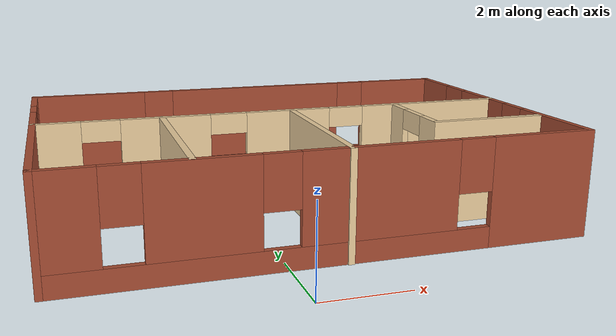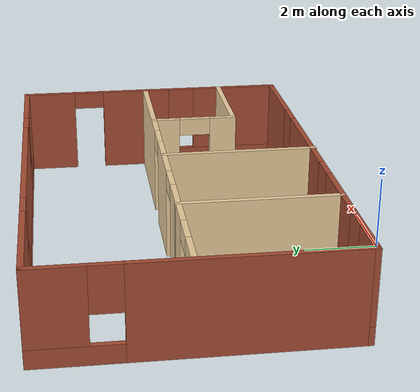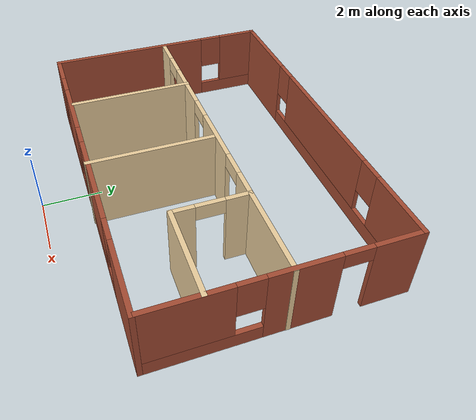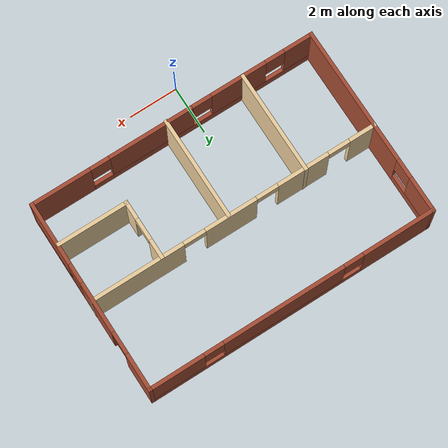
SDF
<?xml version='1.0'?>
<sdf version='1.6'>
  <model name='Building'>
    <pose frame=''>1.04028 5.52884 0 0 -0 0</pose>
    <link name='Wall_0'>
      <pose frame=''>-5.93028 0.01616 0 0 -0 1.5708</pose>
      <visual name='Wall_0_Visual_0'>
        <pose frame=''>-1.14394 0 1.25 0 -0 0</pose>
        <geometry>
          <box>
            <size>5.71213 0.15 2.5</size>
          </box>
        </geometry>
        <material>
          <script>
            <uri>file://media/materials/scripts/gazebo.material</uri>
            <name>Gazebo/Bricks</name>
          </script>
          <ambient>1 1 1 1</ambient>
        </material>
        <meta>
          <layer>0</layer>
        </meta>
      </visual>
      <collision name='Wall_0_Collision_0'>
        <geometry>
          <box>
            <size>5.71213 0.15 2.5</size>
          </box>
        </geometry>
        <pose frame=''>-1.14394 0 1.25 0 -0 0</pose>
      </collision>
      <visual name='Wall_0_Visual_1'>
        <pose frame=''>2.85606 0 0.25 0 -0 0</pose>
        <geometry>
          <box>
            <size>2.28788 0.15 0.5</size>
          </box>
        </geometry>
        <material>
          <script>
            <uri>file://media/materials/scripts/gazebo.material</uri>
            <name>Gazebo/Bricks</name>
          </script>
          <ambient>1 1 1 1</ambient>
        </material>
        <meta>
          <layer>0</layer>
        </meta>
      </visual>
      <collision name='Wall_0_Collision_1'>
        <geometry>
          <box>
            <size>2.28788 0.15 0.5</size>
          </box>
        </geometry>
        <pose frame=''>2.85606 0 0.25 0 -0 0</pose>
      </collision>
      <visual name='Wall_0_Visual_2'>
        <pose frame=''>3.25606 0 1.5 0 -0 0</pose>
        <geometry>
          <box>
            <size>1.48788 0.15 2</size>
          </box>
        </geometry>
        <material>
          <script>
            <uri>file://media/materials/scripts/gazebo.material</uri>
            <name>Gazebo/Bricks</name>
          </script>
          <ambient>1 1 1 1</ambient>
        </material>
        <meta>
          <layer>0</layer>
        </meta>
      </visual>
      <collision name='Wall_0_Collision_2'>
        <geometry>
          <box>
            <size>1.48788 0.15 2</size>
          </box>
        </geometry>
        <pose frame=''>3.25606 0 1.5 0 -0 0</pose>
      </collision>
      <visual name='Wall_0_Visual_3'>
        <pose frame=''>2.11212 0 1.9 0 -0 0</pose>
        <geometry>
          <box>
            <size>0.8 0.15 1.2</size>
          </box>
        </geometry>
        <material>
          <script>
            <uri>file://media/materials/scripts/gazebo.material</uri>
            <name>Gazebo/Bricks</name>
          </script>
          <ambient>1 1 1 1</ambient>
        </material>
        <meta>
          <layer>0</layer>
        </meta>
      </visual>
      <collision name='Wall_0_Collision_3'>
        <geometry>
          <box>
            <size>0.8 0.15 1.2</size>
          </box>
        </geometry>
        <pose frame=''>2.11212 0 1.9 0 -0 0</pose>
      </collision>
    </link>
    <link name='Wall_1'>
      <pose frame=''>-0.005278 3.94116 0 0 -0 0</pose>
      <visual name='Wall_1_Visual_0'>
        <pose frame=''>-4.47581 0 1.25 0 -0 0</pose>
        <geometry>
          <box>
            <size>3.04838 0.15 2.5</size>
          </box>
        </geometry>
        <material>
          <script>
            <uri>file://media/materials/scripts/gazebo.material</uri>
            <name>Gazebo/Bricks</name>
          </script>
          <ambient>1 1 1 1</ambient>
        </material>
        <meta>
          <layer>0</layer>
        </meta>
      </visual>
      <collision name='Wall_1_Collision_0'>
        <geometry>
          <box>
            <size>3.04838 0.15 2.5</size>
          </box>
        </geometry>
        <pose frame=''>-4.47581 0 1.25 0 -0 0</pose>
      </collision>
      <visual name='Wall_1_Visual_1'>
        <pose frame=''>1.52419 0 0.25 0 -0 0</pose>
        <geometry>
          <box>
            <size>8.95162 0.15 0.5</size>
          </box>
        </geometry>
        <material>
          <script>
            <uri>file://media/materials/scripts/gazebo.material</uri>
            <name>Gazebo/Bricks</name>
          </script>
          <ambient>1 1 1 1</ambient>
        </material>
        <meta>
          <layer>0</layer>
        </meta>
      </visual>
      <collision name='Wall_1_Collision_1'>
        <geometry>
          <box>
            <size>8.95162 0.15 0.5</size>
          </box>
        </geometry>
        <pose frame=''>1.52419 0 0.25 0 -0 0</pose>
      </collision>
      <visual name='Wall_1_Visual_2'>
        <pose frame=''>0.370959 0 1.5 0 -0 0</pose>
        <geometry>
          <box>
            <size>5.04515 0.15 2</size>
          </box>
        </geometry>
        <material>
          <script>
            <uri>file://media/materials/scripts/gazebo.material</uri>
            <name>Gazebo/Bricks</name>
          </script>
          <ambient>1 1 1 1</ambient>
        </material>
        <meta>
          <layer>0</layer>
        </meta>
      </visual>
      <collision name='Wall_1_Collision_2'>
        <geometry>
          <box>
            <size>5.04515 0.15 2</size>
          </box>
        </geometry>
        <pose frame=''>0.370959 0 1.5 0 -0 0</pose>
      </collision>
      <visual name='Wall_1_Visual_3'>
        <pose frame=''>4.84677 0 1.5 0 -0 0</pose>
        <geometry>
          <box>
            <size>2.30647 0.15 2</size>
          </box>
        </geometry>
        <material>
          <script>
            <uri>file://media/materials/scripts/gazebo.material</uri>
            <name>Gazebo/Bricks</name>
          </script>
          <ambient>1 1 1 1</ambient>
        </material>
        <meta>
          <layer>0</layer>
        </meta>
      </visual>
      <collision name='Wall_1_Collision_3'>
        <geometry>
          <box>
            <size>2.30647 0.15 2</size>
          </box>
        </geometry>
        <pose frame=''>4.84677 0 1.5 0 -0 0</pose>
      </collision>
      <visual name='Wall_1_Visual_4'>
        <pose frame=''>-2.55162 0 1.9 0 -0 0</pose>
        <geometry>
          <box>
            <size>0.8 0.15 1.2</size>
          </box>
        </geometry>
        <material>
          <script>
            <uri>file://media/materials/scripts/gazebo.material</uri>
            <name>Gazebo/Bricks</name>
          </script>
          <ambient>1 1 1 1</ambient>
        </material>
        <meta>
          <layer>0</layer>
        </meta>
      </visual>
      <collision name='Wall_1_Collision_4'>
        <geometry>
          <box>
            <size>0.8 0.15 1.2</size>
          </box>
        </geometry>
        <pose frame=''>-2.55162 0 1.9 0 -0 0</pose>
      </collision>
      <visual name='Wall_1_Visual_5'>
        <pose frame=''>3.29353 0 1.9 0 -0 0</pose>
        <geometry>
          <box>
            <size>0.8 0.15 1.2</size>
          </box>
        </geometry>
        <material>
          <script>
            <uri>file://media/materials/scripts/gazebo.material</uri>
            <name>Gazebo/Bricks</name>
          </script>
          <ambient>1 1 1 1</ambient>
        </material>
        <meta>
          <layer>0</layer>
        </meta>
      </visual>
      <collision name='Wall_1_Collision_5'>
        <geometry>
          <box>
            <size>0.8 0.15 1.2</size>
          </box>
        </geometry>
        <pose frame=''>3.29353 0 1.9 0 -0 0</pose>
      </collision>
    </link>
    <link name='Wall_11'>
      <collision name='Wall_11_Collision'>
        <geometry>
          <box>
            <size>4.25 0.15 2.5</size>
          </box>
        </geometry>
        <pose frame=''>0 0 1.25 0 -0 0</pose>
      </collision>
      <visual name='Wall_11_Visual'>
        <pose frame=''>0 0 1.25 0 -0 0</pose>
        <geometry>
          <box>
            <size>4.25 0.15 2.5</size>
          </box>
        </geometry>
        <material>
          <script>
            <uri>file://media/materials/scripts/gazebo.material</uri>
            <name>Gazebo/Grey</name>
          </script>
          <ambient>0.921569 0.807843 0.615686 1</ambient>
        </material>
        <meta>
          <layer>0</layer>
        </meta>
      </visual>
      <pose frame=''>0.272165 -1.89116 0 0 0 -1.5708</pose>
    </link>
    <link name='Wall_13'>
      <pose frame=''>3.06519 -0.98956 0 0 0 -1.5708</pose>
      <visual name='Wall_13_Visual_0'>
        <pose frame=''>-0.838996 0 1.25 0 -0 0</pose>
        <geometry>
          <box>
            <size>0.822009 0.15 2.5</size>
          </box>
        </geometry>
        <material>
          <script>
            <uri>file://media/materials/scripts/gazebo.material</uri>
            <name>Gazebo/Grey</name>
          </script>
          <ambient>0.921569 0.807843 0.615686 1</ambient>
        </material>
        <meta>
          <layer>0</layer>
        </meta>
      </visual>
      <collision name='Wall_13_Collision_0'>
        <geometry>
          <box>
            <size>0.822009 0.15 2.5</size>
          </box>
        </geometry>
        <pose frame=''>-0.838996 0 1.25 0 -0 0</pose>
      </collision>
      <visual name='Wall_13_Visual_1'>
        <pose frame=''>0.861004 0 1.25 0 -0 0</pose>
        <geometry>
          <box>
            <size>0.777991 0.15 2.5</size>
          </box>
        </geometry>
        <material>
          <script>
            <uri>file://media/materials/scripts/gazebo.material</uri>
            <name>Gazebo/Grey</name>
          </script>
          <ambient>0.921569 0.807843 0.615686 1</ambient>
        </material>
        <meta>
          <layer>0</layer>
        </meta>
      </visual>
      <collision name='Wall_13_Collision_1'>
        <geometry>
          <box>
            <size>0.777991 0.15 2.5</size>
          </box>
        </geometry>
        <pose frame=''>0.861004 0 1.25 0 -0 0</pose>
      </collision>
      <visual name='Wall_13_Visual_2'>
        <pose frame=''>0.022009 0 2.25 0 -0 0</pose>
        <geometry>
          <box>
            <size>0.9 0.15 0.5</size>
          </box>
        </geometry>
        <material>
          <script>
            <uri>file://media/materials/scripts/gazebo.material</uri>
            <name>Gazebo/Grey</name>
          </script>
          <ambient>0.921569 0.807843 0.615686 1</ambient>
        </material>
        <meta>
          <layer>0</layer>
        </meta>
      </visual>
      <collision name='Wall_13_Collision_2'>
        <geometry>
          <box>
            <size>0.9 0.15 0.5</size>
          </box>
        </geometry>
        <pose frame=''>0.022009 0 2.25 0 -0 0</pose>
      </collision>
    </link>
    <link name='Wall_14'>
      <collision name='Wall_14_Collision'>
        <geometry>
          <box>
            <size>3 0.15 2.5</size>
          </box>
        </geometry>
        <pose frame=''>0 0 1.25 0 -0 0</pose>
      </collision>
      <visual name='Wall_14_Visual'>
        <pose frame=''>0 0 1.25 0 -0 0</pose>
        <geometry>
          <box>
            <size>3 0.15 2.5</size>
          </box>
        </geometry>
        <material>
          <script>
            <uri>file://media/materials/scripts/gazebo.material</uri>
            <name>Gazebo/Grey</name>
          </script>
          <ambient>0.921569 0.807843 0.615686 1</ambient>
        </material>
        <meta>
          <layer>0</layer>
        </meta>
      </visual>
      <pose frame=''>4.49019 -2.16456 0 0 -0 0</pose>
    </link>
    <link name='Wall_2'>
      <pose frame=''>5.91972 0.01616 0 0 0 -1.5708</pose>
      <visual name='Wall_2_Visual_0'>
        <pose frame=''>-3.21405 0 1.25 0 -0 0</pose>
        <geometry>
          <box>
            <size>1.57191 0.15 2.5</size>
          </box>
        </geometry>
        <material>
          <script>
            <uri>file://media/materials/scripts/gazebo.material</uri>
            <name>Gazebo/Bricks</name>
          </script>
          <ambient>1 1 1 1</ambient>
        </material>
        <meta>
          <layer>0</layer>
        </meta>
      </visual>
      <collision name='Wall_2_Collision_0'>
        <geometry>
          <box>
            <size>1.57191 0.15 2.5</size>
          </box>
        </geometry>
        <pose frame=''>-3.21405 0 1.25 0 -0 0</pose>
      </collision>
      <visual name='Wall_2_Visual_1'>
        <pose frame=''>-0.481912 0 1.25 0 -0 0</pose>
        <geometry>
          <box>
            <size>2.09236 0.15 2.5</size>
          </box>
        </geometry>
        <material>
          <script>
            <uri>file://media/materials/scripts/gazebo.material</uri>
            <name>Gazebo/Bricks</name>
          </script>
          <ambient>1 1 1 1</ambient>
        </material>
        <meta>
          <layer>0</layer>
        </meta>
      </visual>
      <collision name='Wall_2_Collision_1'>
        <geometry>
          <box>
            <size>2.09236 0.15 2.5</size>
          </box>
        </geometry>
        <pose frame=''>-0.481912 0 1.25 0 -0 0</pose>
      </collision>
      <visual name='Wall_2_Visual_2'>
        <pose frame=''>2.28213 0 0.25 0 -0 0</pose>
        <geometry>
          <box>
            <size>3.43573 0.15 0.5</size>
          </box>
        </geometry>
        <material>
          <script>
            <uri>file://media/materials/scripts/gazebo.material</uri>
            <name>Gazebo/Bricks</name>
          </script>
          <ambient>1 1 1 1</ambient>
        </material>
        <meta>
          <layer>0</layer>
        </meta>
      </visual>
      <collision name='Wall_2_Collision_2'>
        <geometry>
          <box>
            <size>3.43573 0.15 0.5</size>
          </box>
        </geometry>
        <pose frame=''>2.28213 0 0.25 0 -0 0</pose>
      </collision>
      <visual name='Wall_2_Visual_3'>
        <pose frame=''>2.68214 0 1.5 0 -0 0</pose>
        <geometry>
          <box>
            <size>2.63573 0.15 2</size>
          </box>
        </geometry>
        <material>
          <script>
            <uri>file://media/materials/scripts/gazebo.material</uri>
            <name>Gazebo/Bricks</name>
          </script>
          <ambient>1 1 1 1</ambient>
        </material>
        <meta>
          <layer>0</layer>
        </meta>
      </visual>
      <collision name='Wall_2_Collision_3'>
        <geometry>
          <box>
            <size>2.63573 0.15 2</size>
          </box>
        </geometry>
        <pose frame=''>2.68214 0 1.5 0 -0 0</pose>
      </collision>
      <visual name='Wall_2_Visual_4'>
        <pose frame=''>0.964269 0 1.9 0 -0 0</pose>
        <geometry>
          <box>
            <size>0.8 0.15 1.2</size>
          </box>
        </geometry>
        <material>
          <script>
            <uri>file://media/materials/scripts/gazebo.material</uri>
            <name>Gazebo/Bricks</name>
          </script>
          <ambient>1 1 1 1</ambient>
        </material>
        <meta>
          <layer>0</layer>
        </meta>
      </visual>
      <collision name='Wall_2_Collision_4'>
        <geometry>
          <box>
            <size>0.8 0.15 1.2</size>
          </box>
        </geometry>
        <pose frame=''>0.964269 0 1.9 0 -0 0</pose>
      </collision>
      <visual name='Wall_2_Visual_5'>
        <pose frame=''>-1.97809 0 2.25 0 -0 0</pose>
        <geometry>
          <box>
            <size>0.9 0.15 0.5</size>
          </box>
        </geometry>
        <material>
          <script>
            <uri>file://media/materials/scripts/gazebo.material</uri>
            <name>Gazebo/Bricks</name>
          </script>
          <ambient>1 1 1 1</ambient>
        </material>
        <meta>
          <layer>0</layer>
        </meta>
      </visual>
      <collision name='Wall_2_Collision_5'>
        <geometry>
          <box>
            <size>0.9 0.15 0.5</size>
          </box>
        </geometry>
        <pose frame=''>-1.97809 0 2.25 0 -0 0</pose>
      </collision>
    </link>
    <link name='Wall_3'>
      <pose frame=''>-0.005278 -3.90884 0 0 -0 3.14159</pose>
      <visual name='Wall_3_Visual_0'>
        <pose frame=''>-4.75448 0 1.25 0 -0 0</pose>
        <geometry>
          <box>
            <size>2.49105 0.15 2.5</size>
          </box>
        </geometry>
        <material>
          <script>
            <uri>file://media/materials/scripts/gazebo.material</uri>
            <name>Gazebo/Bricks</name>
          </script>
          <ambient>1 1 1 1</ambient>
        </material>
        <meta>
          <layer>0</layer>
        </meta>
      </visual>
      <collision name='Wall_3_Collision_0'>
        <geometry>
          <box>
            <size>2.49105 0.15 2.5</size>
          </box>
        </geometry>
        <pose frame=''>-4.75448 0 1.25 0 -0 0</pose>
      </collision>
      <visual name='Wall_3_Visual_1'>
        <pose frame=''>1.24552 0 0.25 0 -0 0</pose>
        <geometry>
          <box>
            <size>9.50895 0.15 0.5</size>
          </box>
        </geometry>
        <material>
          <script>
            <uri>file://media/materials/scripts/gazebo.material</uri>
            <name>Gazebo/Bricks</name>
          </script>
          <ambient>1 1 1 1</ambient>
        </material>
        <meta>
          <layer>0</layer>
        </meta>
      </visual>
      <collision name='Wall_3_Collision_1'>
        <geometry>
          <box>
            <size>9.50895 0.15 0.5</size>
          </box>
        </geometry>
        <pose frame=''>1.24552 0 0.25 0 -0 0</pose>
      </collision>
      <visual name='Wall_3_Visual_2'>
        <pose frame=''>-0.955473 0 1.5 0 -0 0</pose>
        <geometry>
          <box>
            <size>3.50695 0.15 2</size>
          </box>
        </geometry>
        <material>
          <script>
            <uri>file://media/materials/scripts/gazebo.material</uri>
            <name>Gazebo/Bricks</name>
          </script>
          <ambient>1 1 1 1</ambient>
        </material>
        <meta>
          <layer>0</layer>
        </meta>
      </visual>
      <collision name='Wall_3_Collision_2'>
        <geometry>
          <box>
            <size>3.50695 0.15 2</size>
          </box>
        </geometry>
        <pose frame=''>-0.955473 0 1.5 0 -0 0</pose>
      </collision>
      <visual name='Wall_3_Visual_3'>
        <pose frame=''>2.76696 0 1.5 0 -0 0</pose>
        <geometry>
          <box>
            <size>2.33792 0.15 2</size>
          </box>
        </geometry>
        <material>
          <script>
            <uri>file://media/materials/scripts/gazebo.material</uri>
            <name>Gazebo/Bricks</name>
          </script>
          <ambient>1 1 1 1</ambient>
        </material>
        <meta>
          <layer>0</layer>
        </meta>
      </visual>
      <collision name='Wall_3_Collision_3'>
        <geometry>
          <box>
            <size>2.33792 0.15 2</size>
          </box>
        </geometry>
        <pose frame=''>2.76696 0 1.5 0 -0 0</pose>
      </collision>
      <visual name='Wall_3_Visual_4'>
        <pose frame=''>5.36796 0 1.5 0 -0 0</pose>
        <geometry>
          <box>
            <size>1.26408 0.15 2</size>
          </box>
        </geometry>
        <material>
          <script>
            <uri>file://media/materials/scripts/gazebo.material</uri>
            <name>Gazebo/Bricks</name>
          </script>
          <ambient>1 1 1 1</ambient>
        </material>
        <meta>
          <layer>0</layer>
        </meta>
      </visual>
      <collision name='Wall_3_Collision_4'>
        <geometry>
          <box>
            <size>1.26408 0.15 2</size>
          </box>
        </geometry>
        <pose frame=''>5.36796 0 1.5 0 -0 0</pose>
      </collision>
      <visual name='Wall_3_Visual_5'>
        <pose frame=''>-3.10895 0 1.9 0 -0 0</pose>
        <geometry>
          <box>
            <size>0.8 0.15 1.2</size>
          </box>
        </geometry>
        <material>
          <script>
            <uri>file://media/materials/scripts/gazebo.material</uri>
            <name>Gazebo/Bricks</name>
          </script>
          <ambient>1 1 1 1</ambient>
        </material>
        <meta>
          <layer>0</layer>
        </meta>
      </visual>
      <collision name='Wall_3_Collision_5'>
        <geometry>
          <box>
            <size>0.8 0.15 1.2</size>
          </box>
        </geometry>
        <pose frame=''>-3.10895 0 1.9 0 -0 0</pose>
      </collision>
      <visual name='Wall_3_Visual_6'>
        <pose frame=''>1.198 0 1.9 0 -0 0</pose>
        <geometry>
          <box>
            <size>0.8 0.15 1.2</size>
          </box>
        </geometry>
        <material>
          <script>
            <uri>file://media/materials/scripts/gazebo.material</uri>
            <name>Gazebo/Bricks</name>
          </script>
          <ambient>1 1 1 1</ambient>
        </material>
        <meta>
          <layer>0</layer>
        </meta>
      </visual>
      <collision name='Wall_3_Collision_6'>
        <geometry>
          <box>
            <size>0.8 0.15 1.2</size>
          </box>
        </geometry>
        <pose frame=''>1.198 0 1.9 0 -0 0</pose>
      </collision>
      <visual name='Wall_3_Visual_7'>
        <pose frame=''>4.33592 0 1.9 0 -0 0</pose>
        <geometry>
          <box>
            <size>0.8 0.15 1.2</size>
          </box>
        </geometry>
        <material>
          <script>
            <uri>file://media/materials/scripts/gazebo.material</uri>
            <name>Gazebo/Bricks</name>
          </script>
          <ambient>1 1 1 1</ambient>
        </material>
        <meta>
          <layer>0</layer>
        </meta>
      </visual>
      <collision name='Wall_3_Collision_7'>
        <geometry>
          <box>
            <size>0.8 0.15 1.2</size>
          </box>
        </geometry>
        <pose frame=''>4.33592 0 1.9 0 -0 0</pose>
      </collision>
    </link>
    <link name='Wall_5'>
      <pose frame=''>0.005278 0.194603 0 0 -0 0</pose>
      <visual name='Wall_5_Visual_0'>
        <pose frame=''>-5.43237 0 1.25 0 -0 0</pose>
        <geometry>
          <box>
            <size>1.13525 0.15 2.5</size>
          </box>
        </geometry>
        <material>
          <script>
            <uri>file://media/materials/scripts/gazebo.material</uri>
            <name>Gazebo/Grey</name>
          </script>
          <ambient>0.921569 0.807843 0.615686 1</ambient>
        </material>
        <meta>
          <layer>0</layer>
        </meta>
      </visual>
      <collision name='Wall_5_Collision_0'>
        <geometry>
          <box>
            <size>1.13525 0.15 2.5</size>
          </box>
        </geometry>
        <pose frame=''>-5.43237 0 1.25 0 -0 0</pose>
      </collision>
      <visual name='Wall_5_Visual_1'>
        <pose frame=''>-2.88524 0 1.25 0 -0 0</pose>
        <geometry>
          <box>
            <size>2.15902 0.15 2.5</size>
          </box>
        </geometry>
        <material>
          <script>
            <uri>file://media/materials/scripts/gazebo.material</uri>
            <name>Gazebo/Grey</name>
          </script>
          <ambient>0.921569 0.807843 0.615686 1</ambient>
        </material>
        <meta>
          <layer>0</layer>
        </meta>
      </visual>
      <collision name='Wall_5_Collision_1'>
        <geometry>
          <box>
            <size>2.15902 0.15 2.5</size>
          </box>
        </geometry>
        <pose frame=''>-2.88524 0 1.25 0 -0 0</pose>
      </collision>
      <visual name='Wall_5_Visual_2'>
        <pose frame=''>0.173787 0 1.25 0 -0 0</pose>
        <geometry>
          <box>
            <size>2.15902 0.15 2.5</size>
          </box>
        </geometry>
        <material>
          <script>
            <uri>file://media/materials/scripts/gazebo.material</uri>
            <name>Gazebo/Grey</name>
          </script>
          <ambient>0.921569 0.807843 0.615686 1</ambient>
        </material>
        <meta>
          <layer>0</layer>
        </meta>
      </visual>
      <collision name='Wall_5_Collision_2'>
        <geometry>
          <box>
            <size>2.15902 0.15 2.5</size>
          </box>
        </geometry>
        <pose frame=''>0.173787 0 1.25 0 -0 0</pose>
      </collision>
      <visual name='Wall_5_Visual_3'>
        <pose frame=''>4.07665 0 1.25 0 -0 0</pose>
        <geometry>
          <box>
            <size>3.8467 0.15 2.5</size>
          </box>
        </geometry>
        <material>
          <script>
            <uri>file://media/materials/scripts/gazebo.material</uri>
            <name>Gazebo/Grey</name>
          </script>
          <ambient>0.921569 0.807843 0.615686 1</ambient>
        </material>
        <meta>
          <layer>0</layer>
        </meta>
      </visual>
      <collision name='Wall_5_Collision_3'>
        <geometry>
          <box>
            <size>3.8467 0.15 2.5</size>
          </box>
        </geometry>
        <pose frame=''>4.07665 0 1.25 0 -0 0</pose>
      </collision>
      <visual name='Wall_5_Visual_4'>
        <pose frame=''>-4.41475 0 2.25 0 -0 0</pose>
        <geometry>
          <box>
            <size>0.9 0.15 0.5</size>
          </box>
        </geometry>
        <material>
          <script>
            <uri>file://media/materials/scripts/gazebo.material</uri>
            <name>Gazebo/Grey</name>
          </script>
          <ambient>0.921569 0.807843 0.615686 1</ambient>
        </material>
        <meta>
          <layer>0</layer>
        </meta>
      </visual>
      <collision name='Wall_5_Collision_4'>
        <geometry>
          <box>
            <size>0.9 0.15 0.5</size>
          </box>
        </geometry>
        <pose frame=''>-4.41475 0 2.25 0 -0 0</pose>
      </collision>
      <visual name='Wall_5_Visual_5'>
        <pose frame=''>-1.35573 0 2.25 0 -0 0</pose>
        <geometry>
          <box>
            <size>0.9 0.15 0.5</size>
          </box>
        </geometry>
        <material>
          <script>
            <uri>file://media/materials/scripts/gazebo.material</uri>
            <name>Gazebo/Grey</name>
          </script>
          <ambient>0.921569 0.807843 0.615686 1</ambient>
        </material>
        <meta>
          <layer>0</layer>
        </meta>
      </visual>
      <collision name='Wall_5_Collision_5'>
        <geometry>
          <box>
            <size>0.9 0.15 0.5</size>
          </box>
        </geometry>
        <pose frame=''>-1.35573 0 2.25 0 -0 0</pose>
      </collision>
      <visual name='Wall_5_Visual_6'>
        <pose frame=''>1.7033 0 2.25 0 -0 0</pose>
        <geometry>
          <box>
            <size>0.9 0.15 0.5</size>
          </box>
        </geometry>
        <material>
          <script>
            <uri>file://media/materials/scripts/gazebo.material</uri>
            <name>Gazebo/Grey</name>
          </script>
          <ambient>0.921569 0.807843 0.615686 1</ambient>
        </material>
        <meta>
          <layer>0</layer>
        </meta>
      </visual>
      <collision name='Wall_5_Collision_6'>
        <geometry>
          <box>
            <size>0.9 0.15 0.5</size>
          </box>
        </geometry>
        <pose frame=''>1.7033 0 2.25 0 -0 0</pose>
      </collision>
    </link>
    <link name='Wall_9'>
      <collision name='Wall_9_Collision'>
        <geometry>
          <box>
            <size>4.25 0.15 2.5</size>
          </box>
        </geometry>
        <pose frame=''>0 0 1.25 0 -0 0</pose>
      </collision>
      <visual name='Wall_9_Visual'>
        <pose frame=''>0 0 1.25 0 -0 0</pose>
        <geometry>
          <box>
            <size>4.25 0.15 2.5</size>
          </box>
        </geometry>
        <material>
          <script>
            <uri>file://media/materials/scripts/gazebo.material</uri>
            <name>Gazebo/Grey</name>
          </script>
          <ambient>0.921569 0.807843 0.615686 1</ambient>
        </material>
        <meta>
          <layer>0</layer>
        </meta>
      </visual>
      <pose frame=''>-2.97306 -1.83796 0 0 0 -1.5708</pose>
    </link>
    <static>1</static>
  </model>
</sdf>
